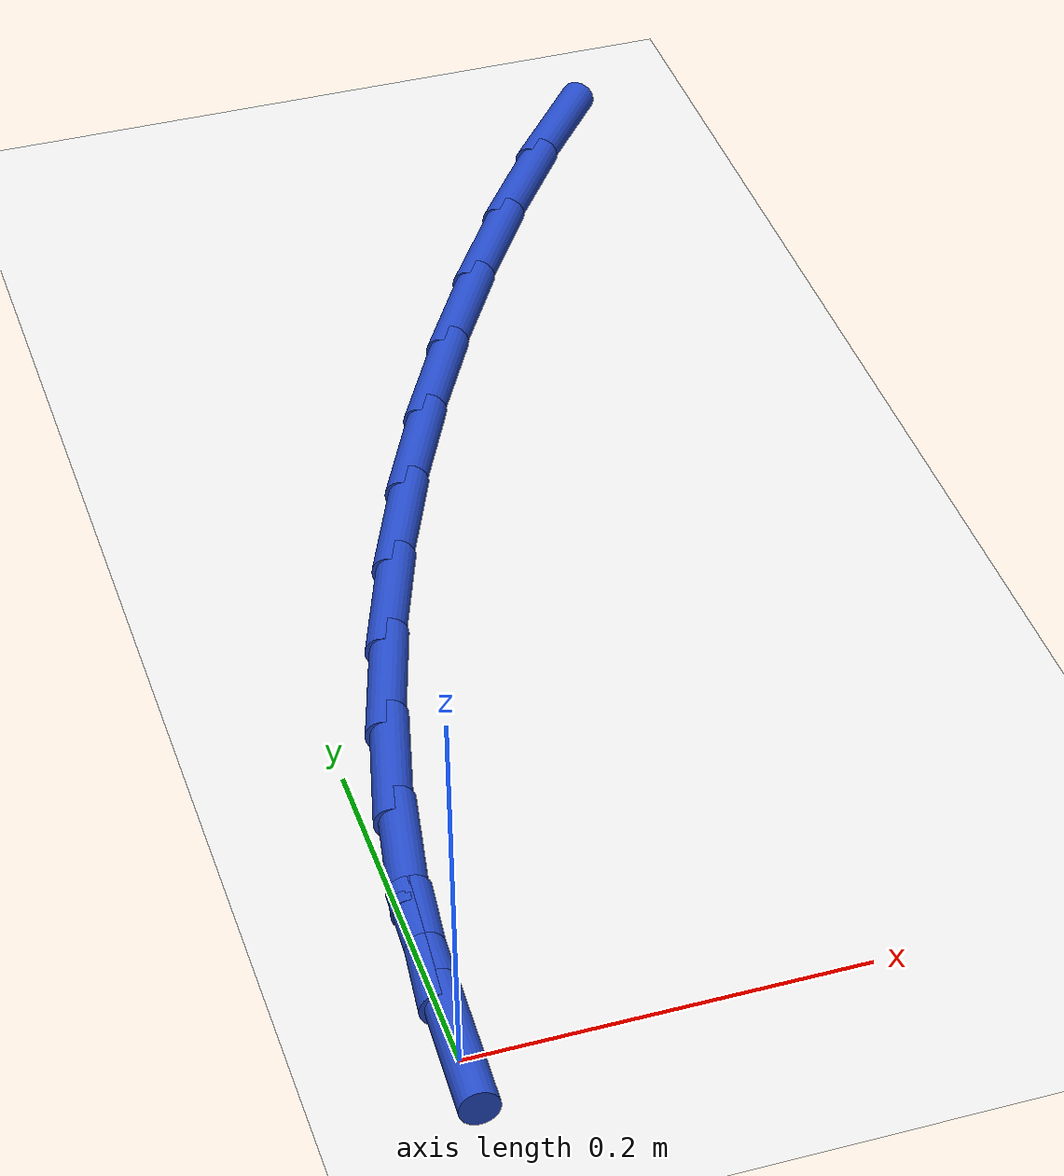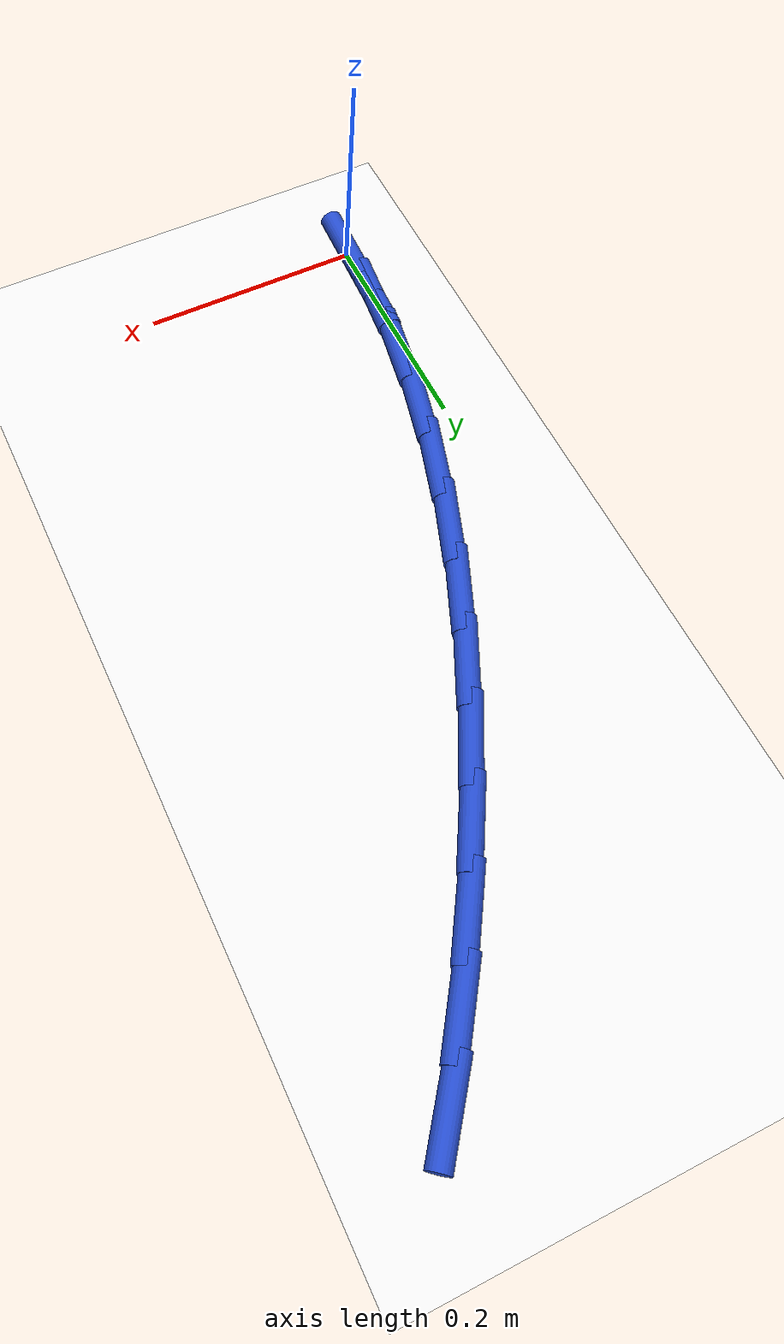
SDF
<sdf version="1.6">
 <world name="default">
  <model name="ground_plane">
   <static>1</static>
   <link name="link">
    <collision name="collision">
     <geometry><plane><normal>0 0 1</normal><size>100 100</size></plane></geometry>
     <surface><friction><ode><mu>100</mu><mu2>50</mu2></ode></friction></surface>
    </collision>
    <visual name="visual">
     <cast_shadows>0</cast_shadows>
     <geometry><plane><normal>0 0 1</normal><size>100 100</size></plane></geometry>
     <material>
      <script><uri>file://media/materials/scripts/gazebo.material</uri><name>Gazebo/WhiteGlow</name></script>
     </material>
    </visual>
   </link>
  </model>
  <model name="line">
   <link name="link_1">
    <pose>0.003013712552685949 0.06375739300906667 0.01 0 1.57 1.4556978881426375</pose>
    <collision name="collision">
     <geometry><cylinder><radius>0.01</radius><length>0.08</length></cylinder></geometry>
    </collision>
    <visual name="visual">
     <material>
      <script><name>Gazebo/Blue</name><uri>file://media/materials/scripts/gazebo.material</uri></script>
     </material>
     <geometry><cylinder><radius>0.01</radius><length>0.08</length></cylinder></geometry>
    </visual>
   </link>
   <link name="link_2">
    <pose>0.010298027476231975 0.12676537015829284 0.01 0 1.57 1.39062086703469</pose>
    <collision name="collision">
     <geometry><cylinder><radius>0.01</radius><length>0.08</length></cylinder></geometry>
    </collision>
    <visual name="visual">
     <material>
      <script><name>Gazebo/Blue</name><uri>file://media/materials/scripts/gazebo.material</uri></script>
     </material>
     <geometry><cylinder><radius>0.01</radius><length>0.08</length></cylinder></geometry>
    </visual>
   </link>
   <link name="link_3">
    <pose>0.021642180475296185 0.18904427705437649 0.01 0 1.57 1.32886681118052</pose>
    <collision name="collision">
     <geometry><cylinder><radius>0.01</radius><length>0.08</length></cylinder></geometry>
    </collision>
    <visual name="visual">
     <material>
      <script><name>Gazebo/Blue</name><uri>file://media/materials/scripts/gazebo.material</uri></script>
     </material>
     <geometry><cylinder><radius>0.01</radius><length>0.08</length></cylinder></geometry>
    </visual>
   </link>
   <link name="link_4">
    <pose>0.036835407254536746 0.25061445930401594 0.01 0 1.57 1.270817500114788</pose>
    <collision name="collision">
     <geometry><cylinder><radius>0.01</radius><length>0.08</length></cylinder></geometry>
    </collision>
    <visual name="visual">
     <material>
      <script><name>Gazebo/Blue</name><uri>file://media/materials/scripts/gazebo.material</uri></script>
     </material>
     <geometry><cylinder><radius>0.01</radius><length>0.08</length></cylinder></geometry>
    </visual>
   </link>
   <link name="link_5">
    <pose>0.05566694351861188 0.31149626251390905 0.01 0 1.57 1.21670878855532</pose>
    <collision name="collision">
     <geometry><cylinder><radius>0.01</radius><length>0.08</length></cylinder></geometry>
    </collision>
    <visual name="visual">
     <material>
      <script><name>Gazebo/Blue</name><uri>file://media/materials/scripts/gazebo.material</uri></script>
     </material>
     <geometry><cylinder><radius>0.01</radius><length>0.08</length></cylinder></geometry>
    </visual>
   </link>
   <link name="link_6">
    <pose>0.07792602497217967 0.37171003229075367 0.01 0 1.57 1.1666487980546603</pose>
    <collision name="collision">
     <geometry><cylinder><radius>0.01</radius><length>0.08</length></cylinder></geometry>
    </collision>
    <visual name="visual">
     <material>
      <script><name>Gazebo/Blue</name><uri>file://media/materials/scripts/gazebo.material</uri></script>
     </material>
     <geometry><cylinder><radius>0.01</radius><length>0.08</length></cylinder></geometry>
    </visual>
   </link>
   <link name="link_7">
    <pose>0.10340188731989836 0.43127611424124834 0.01 0 1.57 1.120641957978991</pose>
    <collision name="collision">
     <geometry><cylinder><radius>0.01</radius><length>0.08</length></cylinder></geometry>
    </collision>
    <visual name="visual">
     <material>
      <script><name>Gazebo/Blue</name><uri>file://media/materials/scripts/gazebo.material</uri></script>
     </material>
     <geometry><cylinder><radius>0.01</radius><length>0.08</length></cylinder></geometry>
    </visual>
   </link>
   <link name="link_8">
    <pose>0.13188376626642606 0.4902148539720907 0.01 0 1.57 1.0786120430602384</pose>
    <collision name="collision">
     <geometry><cylinder><radius>0.01</radius><length>0.08</length></cylinder></geometry>
    </collision>
    <visual name="visual">
     <material>
      <script><name>Gazebo/Blue</name><uri>file://media/materials/scripts/gazebo.material</uri></script>
     </material>
     <geometry><cylinder><radius>0.01</radius><length>0.08</length></cylinder></geometry>
    </visual>
   </link>
   <link name="link_9">
    <pose>0.1631609616749496 0.5485463759499077 0.01 0 1.57 1.0389866353332635</pose>
    <collision name="collision">
     <geometry><cylinder><radius>0.01</radius><length>0.08</length></cylinder></geometry>
    </collision>
    <visual name="visual">
     <material>
      <script><name>Gazebo/Blue</name><uri>file://media/materials/scripts/gazebo.material</uri></script>
     </material>
     <geometry><cylinder><radius>0.01</radius><length>0.08</length></cylinder></geometry>
    </visual>
   </link>
   <link name="link_10">
    <pose>0.19705981369770875 0.6061631350649727 0.01 0 1.57 0.9975210417100189</pose>
    <collision name="collision">
     <geometry><cylinder><radius>0.01</radius><length>0.08</length></cylinder></geometry>
    </collision>
    <visual name="visual">
     <material>
      <script><name>Gazebo/Blue</name><uri>file://media/materials/scripts/gazebo.material</uri></script>
     </material>
     <geometry><cylinder><radius>0.01</radius><length>0.08</length></cylinder></geometry>
    </visual>
   </link>
   <link name="link_11">
    <pose>0.2335057569958316 0.6626160296405852 0.01 0 1.57 0.95292165867742</pose>
    <collision name="collision">
     <geometry><cylinder><radius>0.01</radius><length>0.08</length></cylinder></geometry>
    </collision>
    <visual name="visual">
     <material>
      <script><name>Gazebo/Blue</name><uri>file://media/materials/scripts/gazebo.material</uri></script>
     </material>
     <geometry><cylinder><radius>0.01</radius><length>0.08</length></cylinder></geometry>
    </visual>
   </link>
   <link name="link_12">
    <pose>0.2724406220397442 0.7173994453193788 0.01 0 1.57 0.9044686494466737</pose>
    <collision name="collision">
     <geometry><cylinder><radius>0.01</radius><length>0.08</length></cylinder></geometry>
    </collision>
    <visual name="visual">
     <material>
      <script><name>Gazebo/Blue</name><uri>file://media/materials/scripts/gazebo.material</uri></script>
     </material>
     <geometry><cylinder><radius>0.01</radius><length>0.08</length></cylinder></geometry>
    </visual>
   </link>
   <link name="link_110">
    <pose>-3.8163916471489756e-17 2.7755575615628914e-16 0.01 0 1.57 1.5227201806383903</pose>
    <collision name="collision">
     <geometry><cylinder><radius>0.01</radius><length>0.08</length></cylinder></geometry>
    </collision>
    <visual name="visual">
     <material>
      <script><name>Gazebo/Blue</name><uri>file://media/materials/scripts/gazebo.material</uri></script>
     </material>
     <geometry><cylinder><radius>0.01</radius><length>0.08</length></cylinder></geometry>
    </visual>
   </link>
   <link name="link_111">
    <pose>0.003063395209081589 0.06367055041016294 0.01 0 1.57 1.5227201806383903</pose>
    <collision name="collision">
     <geometry><cylinder><radius>0.01</radius><length>0.08</length></cylinder></geometry>
    </collision>
    <visual name="visual">
     <material>
      <script><name>Gazebo/Blue</name><uri>file://media/materials/scripts/gazebo.material</uri></script>
     </material>
     <geometry><cylinder><radius>0.01</radius><length>0.08</length></cylinder></geometry>
    </visual>
   </link>
  </model>
 </world>
</sdf>
